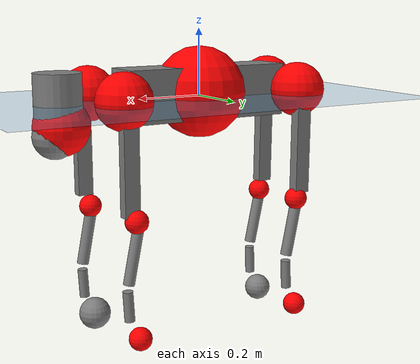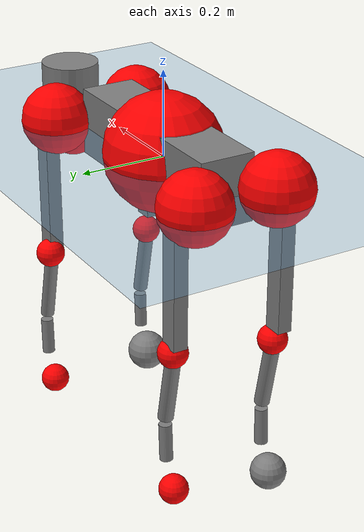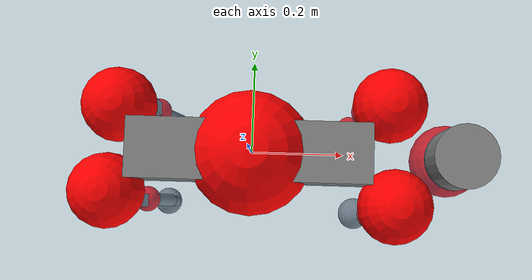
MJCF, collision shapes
<mujoco model="go2">
  <compiler angle="radian" assetdir="assets" balanceinertia="true" inertiafromgeom="false"/>

  <option timestep="0.005" density="1.2" viscosity="2e-05"/>

  <size nkey="1"/>

  <visual>
    <quality shadowsize="8192"/>
    <map shadowclip="0.5"/>
  </visual>

  <default>
    <default class="/">
      <geom contype="0" conaffinity="0" group="1" solref="-1000 -80"/>
      <site size="0.01 0.005 0.005" group="5"/>
      <general forcelimited="true" biastype="affine" gainprm="20" biasprm="0 -20 -0.5"/>
      <default class="go2">
        <joint armature="0.01" damping="0.01" frictionloss="0.2"/>
        <geom condim="1" margin="0.001"/>
        <default class="visual">
          <geom type="mesh" group="2"/>
        </default>
        <default class="collision">
          <geom group="3"/>
          <default class="foot">
            <geom size="0.022 0 0" condim="6" priority="1" friction="0.8 0.02 0.01" solimp="0.015 1 0.022"/>
          </default>
        </default>
        <default class="reward_collision_sphere">
          <geom group="5" rgba="1 0 0 1"/>
        </default>
      </default>
    </default>
  </default>

  <asset>
    <texture type="skybox" colorspace="auto" name="//unnamed_texture_0" builtin="gradient" rgb1="0.95 0.95 0.95" rgb2="0.95 0.95 0.95" width="100" height="600"/>
    <texture type="2d" colorspace="auto" name="texplane" builtin="checker" rgb1="0.345 0.575 0.748" rgb2="0.345 0.575 0.748" markrgb="1 1 1" width="512" height="512"/>
    <material name="MatPlane" class="/" texture="texplane" texuniform="true" texrepeat="2 2" specular="0.9"/>
    <material name="metal" class="/" rgba="0.9 0.95 0.95 1"/>
    <material name="black" class="/" rgba="0 0 0 1"/>
    <material name="white" class="/"/>
    <material name="gray" class="/" rgba="0.671705 0.692426 0.77427 1"/>
    <mesh name="base_0" class="/" file="base_0.obj"/>
    <mesh name="base_1" class="/" file="base_1.obj"/>
    <mesh name="base_2" class="/" file="base_2.obj"/>
    <mesh name="base_3" class="/" file="base_3.obj"/>
    <mesh name="base_4" class="/" file="base_4.obj"/>
    <mesh name="hip_0" class="/" file="hip_0.obj"/>
    <mesh name="hip_1" class="/" file="hip_1.obj"/>
    <mesh name="thigh_0" class="/" file="thigh_0.obj"/>
    <mesh name="thigh_1" class="/" file="thigh_1.obj"/>
    <mesh name="thigh_mirror_0" class="/" file="thigh_mirror_0.obj"/>
    <mesh name="thigh_mirror_1" class="/" file="thigh_mirror_1.obj"/>
    <mesh name="calf_0" class="/" file="calf_0.obj"/>
    <mesh name="calf_1" class="/" file="calf_1.obj"/>
    <mesh name="calf_mirror_0" class="/" file="calf_mirror_0.obj"/>
    <mesh name="calf_mirror_1" class="/" file="calf_mirror_1.obj"/>
    <mesh name="foot" class="/" file="foot.obj"/>
  </asset>

  <worldbody>
    <geom name="floor" class="/" size="100 100 0.125" type="plane" group="0" material="MatPlane"/>
    <light name="toplight_shadow" class="/" pos="0 0 5" dir="0.0990148 0.0990148 -0.990148" type="directional" ambient="0.04 0.04 0.04" diffuse="0.55 0.55 0.55" specular="0.12 0.12 0.12"/>
    <light name="toplight_fill" class="/" pos="0 0 5" dir="0.0990148 0.0990148 -0.990148" type="directional" castshadow="false" ambient="0.04 0.04 0.04" diffuse="0.3 0.3 0.3" specular="0.08 0.08 0.08"/>
    <body name="trunk" childclass="go2" pos="-0.0024907 -0.000657639 0.0109518" quat="0.999999 0.000280984 0.00140234 -0.000279607">
      <inertial pos="0.0456234 0.0137223 -0.0164879" quat="-0.0256266 0.728003 -0.000442034 0.685094" mass="18.0025" diaginertia="0.808349 0.0492796 0.250007"/>
      <joint name="//unnamed_joint_0" type="free" armature="0" damping="0" frictionloss="0"/>
      <geom name="//unnamed_geom_1" class="visual" material="black" mesh="base_0"/>
      <geom name="//unnamed_geom_2" class="visual" material="black" mesh="base_1"/>
      <geom name="//unnamed_geom_3" class="visual" material="black" mesh="base_2"/>
      <geom name="//unnamed_geom_4" class="visual" material="white" mesh="base_3"/>
      <geom name="//unnamed_geom_5" class="visual" material="gray" mesh="base_4"/>
      <geom name="trunk_1" class="collision" size="0.259469 0.0644878 0.0786269" type="box"/>
      <geom name="trunk_2" class="collision" size="0.0689709 0.0620739" pos="0.453002 0 0.0164234" type="cylinder"/>
      <geom name="trunk_3" class="collision" size="0.0648327" pos="0.465718 0 -0.0985405"/>
      <geom name="//unnamed_geom_9" class="reward_collision_sphere" size="0.137942"/>
      <geom name="//unnamed_geom_10" class="reward_collision_sphere" size="0.0827651" pos="0.445054 0 -0.0739053"/>
      <site name="imu" pos="0.038405 0.0171008 0.00139082" size="0.0137942"/>
      <camera name="track" pos="0 -1.81287 0" quat="0.707107 0.707107 0 0" mode="trackcom"/>
      <camera name="ego_camera" pos="0.495918 0 0.0739053" quat="-0.5 -0.5 0.5 0.5"/>
      <body name="FL_hip" pos="0.304031 0.0490869 0.000869495" quat="0.999991 -0.0022191 0.00238091 0.00266883">
        <inertial pos="-0.0224417 0.0102872 0.00172413" quat="0.531111 0.475936 0.482364 0.508657" mass="2.13033" diaginertia="0.0107827 0.000372703 0.0053727"/>
        <joint name="FL_hip_joint" pos="0 0 0" axis="0.99829 -0.0583586 -0.00348521" stiffness="0.0290048" range="-1.00618 0.862573" armature="0.00350551" damping="0.0783559" frictionloss="0.333122"/>
        <geom name="//unnamed_geom_11" class="visual" material="metal" mesh="hip_0"/>
        <geom name="//unnamed_geom_12" class="visual" material="gray" mesh="hip_1"/>
        <geom name="//unnamed_geom_13" class="collision" size="0.0634533 0.0275884" pos="0 0.0725149 0" quat="0.707107 0.707107 0 0" type="cylinder"/>
        <geom name="//unnamed_geom_14" class="reward_collision_sphere" size="0.0827651" pos="0 0.0634505 0"/>
        <body name="FL_thigh" pos="-0.000341889 0.0887529 -0.000373251" quat="0.999999 0.000166841 -0.000126464 -0.00104682">
          <inertial pos="-0.0134572 -0.0182493 -0.067857" quat="0.823302 0.064051 -0.0340456 0.56295" mass="2.58348" diaginertia="0.0693082 0.00347653 0.0107585"/>
          <joint name="FL_thigh_joint" pos="0 0 0" axis="-0.00384977 0.996999 0.07732" range="-1.46612 3.40612" armature="0.0112926" damping="0.0366243" frictionloss="0.463792"/>
          <geom name="//unnamed_geom_15" class="visual" material="metal" mesh="thigh_0"/>
          <geom name="//unnamed_geom_16" class="visual" material="gray" mesh="thigh_1"/>
          <geom name="//unnamed_geom_17" class="collision" size="0.146908 0.0168979 0.0234501" pos="0 0 -0.174909" quat="0.707107 0 0.707107 0" type="box"/>
          <body name="FL_calf" pos="-0.0124943 0.0128739 -0.334017" quat="0.999981 0.00619305 5.61044e-05 -0.000767314">
            <inertial pos="0.0150317 -0.000738119 -0.227049" quat="0.726008 0.0162299 -0.00200153 0.687492" mass="0.717949" diaginertia="0.0169848 0.000893405 0.000748843"/>
            <joint name="FL_calf_joint" pos="0 0 0" axis="0.0553913 0.997933 -0.0325832" stiffness="0.00646398" range="-2.51222 -0.980986" armature="0.00820545" damping="0.0701581" frictionloss="0.135917"/>
            <geom name="//unnamed_geom_18" class="visual" material="gray" mesh="calf_0"/>
            <geom name="//unnamed_geom_19" class="visual" material="black" mesh="calf_1"/>
            <geom name="FL_calf0" class="collision" size="0.016553 0.0827651" pos="0.0127158 0 -0.0985405" quat="0.994493 0 -0.104807 0" type="cylinder"/>
            <geom name="//unnamed_geom_21" class="collision" size="0.0151736 0.0448311" pos="0.0317896 0 -0.243066" quat="0.999688 0 0.0249974 0" type="cylinder"/>
            <geom name="//unnamed_geom_22" class="visual" pos="0 0 -0.349819" quat="1 0 0 0" material="black" mesh="foot"/>
            <geom name="FL_foot" class="foot" size="0.0327648" pos="-0.00317896 0 -0.349819"/>
            <geom name="//unnamed_geom_24" class="reward_collision_sphere" size="0.0344855"/>
            <geom name="//unnamed_geom_25" class="reward_collision_sphere" size="0.0344855" pos="-0.00317896 0 -0.349819"/>
            <site name="FL_foot" class="foot" pos="-0.00317896 0 -0.349819" size="0.0137942"/>
          </body>
        </body>
      </body>
      <body name="FR_hip" pos="0.317743 -0.0452471 0.00237586" quat="1 0.000279446 0.000208655 -1.23908e-05">
        <inertial pos="-0.0220642 0.00109117 -0.00241502" quat="0.496484 0.506315 0.500639 0.496497" mass="1.65795" diaginertia="0.0086132 0.000281574 0.00506979"/>
        <joint name="FR_hip_joint" pos="0 0 0" axis="0.999408 -0.0213998 -0.0269465" stiffness="0.031661" range="-0.765876 0.971851" armature="0.0225402" damping="0.00966862" frictionloss="0.465598"/>
        <geom name="//unnamed_geom_26" class="visual" pos="0 -6.4109e-09 -2.74977e-07" quat="4.63268e-05 1 0 0" material="metal" mesh="hip_0"/>
        <geom name="//unnamed_geom_27" class="visual" pos="0 -1.03928e-08 6.80123e-07" quat="4.63268e-05 1 0 0" material="gray" mesh="hip_1"/>
        <geom name="//unnamed_geom_28" class="collision" size="0.0634533 0.0275884" pos="0 -0.0725149 0" quat="0.707107 0.707107 0 0" type="cylinder"/>
        <geom name="//unnamed_geom_29" class="reward_collision_sphere" size="0.0827651" pos="0 -0.0634505 0"/>
        <body name="FR_thigh" pos="0.00784518 -0.101109 0.00858769" quat="0.999998 0.001951 0.000626389 0.000625944">
          <inertial pos="-0.00451688 0.0165935 -0.0513034" quat="0.599272 0.00672848 0.064023 0.797953" mass="4.11146" diaginertia="0.0670977 0.00358257 0.0108289"/>
          <joint name="FR_thigh_joint" pos="0 0 0" axis="0.0517948 -0.998181 0.0308414" stiffness="0.0218309" range="-3.80296 1.36012" armature="0.0124369" damping="0.0719653" frictionloss="0.0437506"/>
          <geom name="//unnamed_geom_30" class="visual" material="metal" mesh="thigh_mirror_0"/>
          <geom name="//unnamed_geom_31" class="visual" material="gray" mesh="thigh_mirror_1"/>
          <geom name="//unnamed_geom_32" class="collision" size="0.146908 0.0168979 0.0234501" pos="0 0 -0.174909" quat="0.707107 0 0.707107 0" type="box"/>
          <body name="FR_calf" pos="-0.0136094 0.0145897 -0.357187" quat="0.999999 0.000329842 0.000680241 -0.000812139">
            <inertial pos="0.00988655 0.00229889 -0.246728" quat="0.685922 0.0184724 -0.0326334 0.726708" mass="0.655802" diaginertia="0.0178674 0.00102376 0.000614729"/>
            <joint name="FR_calf_joint" pos="0 0 0" axis="-0.010222 -0.999915 -0.00808597" range="1.03093 2.51875" armature="0.0181005" damping="0" frictionloss="0.485308"/>
            <geom name="//unnamed_geom_33" class="visual" material="gray" mesh="calf_mirror_0"/>
            <geom name="//unnamed_geom_34" class="visual" material="black" mesh="calf_mirror_1"/>
            <geom name="FR_calf0" class="collision" size="0.0179324 0.0827651" pos="0.0158948 0 -0.0985405" quat="0.995004 0 -0.0998334 0" type="cylinder"/>
            <geom name="//unnamed_geom_36" class="collision" size="0.0151736 0.0448311" pos="0.0317896 0 -0.243066" quat="0.999688 0 0.0249974 0" type="cylinder"/>
            <geom name="//unnamed_geom_37" class="visual" pos="0 0 -0.349819" quat="1 0 0 0" material="black" mesh="foot"/>
            <geom name="FR_foot" class="foot" size="0.0496266" pos="-0.00317896 0 -0.349819"/>
            <geom name="//unnamed_geom_39" class="reward_collision_sphere" size="0.0344855"/>
            <geom name="//unnamed_geom_40" class="reward_collision_sphere" size="0.0344855" pos="-0.00317896 0 -0.349819"/>
            <site name="FR_foot" class="foot" pos="-0.00317896 0 -0.349819" size="0.0137942"/>
          </body>
        </body>
      </body>
      <body name="RL_hip" pos="-0.291874 0.0344174 0.000784976" quat="0.999996 -0.000133578 -0.0016446 -0.00234681">
        <inertial pos="0.000573073 -0.0123742 -0.00187686" quat="0.501089 0.472215 0.484964 0.539196" mass="1.76873" diaginertia="0.0112978 0.000343086 0.0078092"/>
        <joint name="RL_hip_joint" pos="0 0 0" axis="-0.999437 -0.0263261 -0.0207765" stiffness="0.0332445" range="-1.18685 1.38362" armature="0.0240891" damping="0.0600253" frictionloss="0.295647"/>
        <geom name="//unnamed_geom_41" class="visual" pos="4.60503e-10 0 9.02693e-08" quat="4.63268e-05 0 1 0" material="metal" mesh="hip_0"/>
        <geom name="//unnamed_geom_42" class="visual" pos="7.46531e-10 0 8.0056e-08" quat="4.63268e-05 0 1 0" material="gray" mesh="hip_1"/>
        <geom name="//unnamed_geom_43" class="collision" size="0.0634533 0.0275884" pos="0 0.0725149 0" quat="0.707107 0.707107 0 0" type="cylinder"/>
        <geom name="//unnamed_geom_44" class="reward_collision_sphere" size="0.0827651" pos="0 0.0634505 0"/>
        <body name="RL_thigh" pos="0.0102694 0.103074 0.00525123" quat="1 -8.87446e-05 3.36551e-05 7.02937e-05">
          <inertial pos="-0.00684489 -0.0327286 -0.0499728" quat="0.825819 0.0935581 -0.0154066 0.555907" mass="3.03094" diaginertia="0.0601754 0.00404554 0.00979328"/>
          <joint name="RL_thigh_joint" pos="0 0 0" axis="-0.0179599 0.997927 0.0618013" range="-0.531856 4.5928" armature="0.0197192" damping="0.049967" frictionloss="0.183564"/>
          <geom name="//unnamed_geom_45" class="visual" material="metal" mesh="thigh_0"/>
          <geom name="//unnamed_geom_46" class="visual" material="gray" mesh="thigh_1"/>
          <geom name="//unnamed_geom_47" class="collision" size="0.146908 0.0168979 0.0234501" pos="0 0 -0.174909" quat="0.707107 0 0.707107 0" type="box"/>
          <body name="RL_calf" pos="0.0103956 -0.00136132 -0.342775" quat="0.999993 -0.000724571 0.00340612 -0.00111491">
            <inertial pos="0.00941487 -0.000654171 -0.23128" quat="0.69702 0.0654903 -0.0555259 0.711892" mass="0.63152" diaginertia="0.0147506 0.000861388 0.000761769"/>
            <joint name="RL_calf_joint" pos="0 0 0" axis="-0.00014814 0.998305 0.0582052" range="-2.74065 -0.836931" armature="0.0214002" damping="0.0227858" frictionloss="0.132003"/>
            <geom name="//unnamed_geom_48" class="visual" material="gray" mesh="calf_0"/>
            <geom name="//unnamed_geom_49" class="visual" material="black" mesh="calf_1"/>
            <geom name="RL_calf0" class="collision" size="0.0179324 0.0827651" pos="0.0158948 0 -0.0985405" quat="0.995004 0 -0.0998334 0" type="cylinder"/>
            <geom name="//unnamed_geom_51" class="collision" size="0.0151736 0.0448311" pos="0.0317896 0 -0.243066" quat="0.999688 0 0.0249974 0" type="cylinder"/>
            <geom name="//unnamed_geom_52" class="visual" pos="0 0 -0.349819" quat="1 0 0 0" material="black" mesh="foot"/>
            <geom name="RL_foot" class="foot" size="0.0118948" pos="-0.00317896 0 -0.349819"/>
            <geom name="//unnamed_geom_54" class="reward_collision_sphere" size="0.0344855"/>
            <geom name="//unnamed_geom_55" class="reward_collision_sphere" size="0.0344855" pos="-0.00317896 0 -0.349819"/>
            <site name="RL_foot" class="foot" pos="-0.00317896 0 -0.349819" size="0.0137942"/>
          </body>
        </body>
      </body>
      <body name="RR_hip" pos="-0.30906 -0.027945 0.00795832" quat="0.999982 -0.00369931 -0.004306 -0.00193062">
        <inertial pos="0.0229859 -0.001124 -0.0134407" quat="0.485452 0.510881 0.483709 0.519001" mass="1.9814" diaginertia="0.00993319 0.000401464 0.00755938"/>
        <joint name="RR_hip_joint" pos="0 0 0" axis="-0.999996 -0.00210832 -0.00179508" stiffness="0.0424318" range="-0.789078 0.736252" armature="0.0143666" damping="0.0589128" frictionloss="0.27984"/>
        <geom name="//unnamed_geom_56" class="visual" pos="-4.84151e-10 -6.4109e-09 3.65246e-07" quat="2.14617e-09 4.63268e-05 4.63268e-05 -1" material="metal" mesh="hip_0"/>
        <geom name="//unnamed_geom_57" class="visual" pos="-6.88042e-10 -1.03928e-08 -6.00067e-07" quat="2.14617e-09 4.63268e-05 4.63268e-05 -1" material="gray" mesh="hip_1"/>
        <geom name="//unnamed_geom_58" class="collision" size="0.0634533 0.0275884" pos="0 -0.0725149 0" quat="0.707107 0.707107 0 0" type="cylinder"/>
        <geom name="//unnamed_geom_59" class="reward_collision_sphere" size="0.0827651" pos="0 -0.0634505 0"/>
        <body name="RR_thigh" pos="-0.00185907 -0.0781763 -0.0143478" quat="0.999999 0.000593923 0.000963264 -0.000319734">
          <inertial pos="-0.0170961 0.0249923 -0.0578278" quat="0.552103 -0.0179101 0.084747 0.829265" mass="4.34147" diaginertia="0.0846573 0.00423779 0.0119015"/>
          <joint name="RR_thigh_joint" pos="0 0 0" axis="0.0594598 -0.998015 -0.0207564" stiffness="0.00691627" range="-4.57433 0.539665" armature="0.0189199" damping="0.0428525" frictionloss="0.27751"/>
          <geom name="//unnamed_geom_60" class="visual" material="metal" mesh="thigh_mirror_0"/>
          <geom name="//unnamed_geom_61" class="visual" material="gray" mesh="thigh_mirror_1"/>
          <geom name="//unnamed_geom_62" class="collision" size="0.146908 0.0168979 0.0234501" pos="0 0 -0.174909" quat="0.707107 0 0.707107 0" type="box"/>
          <body name="RR_calf" pos="0.0140131 0.00475425 -0.35375" quat="0.999991 0.00125896 0.000723117 0.0039639">
            <inertial pos="0.0172324 -0.000845706 -0.234133" quat="0.680504 -0.0604114 -0.0108491 0.73017" mass="0.592246" diaginertia="0.0163983 0.000732039 0.000606421"/>
            <joint name="RR_calf_joint" pos="0 0 0" axis="0.00553852 -0.999976 -0.00407659" range="0.926107 2.84585" armature="0.0243218" damping="0" frictionloss="0.277617"/>
            <geom name="//unnamed_geom_63" class="visual" material="gray" mesh="calf_mirror_0"/>
            <geom name="//unnamed_geom_64" class="visual" material="black" mesh="calf_mirror_1"/>
            <geom name="RR_calf0" class="collision" size="0.0179324 0.0827651" pos="0.0158948 0 -0.0985405" quat="0.995004 0 -0.0998334 0" type="cylinder"/>
            <geom name="//unnamed_geom_66" class="collision" size="0.0151736 0.0448311" pos="0.0317896 0 -0.243066" quat="0.999688 0 0.0249974 0" type="cylinder"/>
            <geom name="//unnamed_geom_67" class="visual" pos="0 0 -0.349819" quat="1 0 0 0" material="black" mesh="foot"/>
            <geom name="RR_foot" class="foot" size="0.042383" pos="-0.00317896 0 -0.349819"/>
            <geom name="//unnamed_geom_69" class="reward_collision_sphere" size="0.0344855"/>
            <geom name="//unnamed_geom_70" class="reward_collision_sphere" size="0.0344855" pos="-0.00317896 0 -0.349819"/>
            <site name="RR_foot" class="foot" pos="-0.00317896 0 -0.349819" size="0.0137942"/>
          </body>
        </body>
      </body>
    </body>
  </worldbody>

  <contact>
    <pair class="/" geom1="floor" geom2="FL_foot" name="//unnamed_contact_0"/>
    <pair class="/" geom1="floor" geom2="FR_foot" name="//unnamed_contact_1"/>
    <pair class="/" geom1="floor" geom2="RL_foot" name="//unnamed_contact_2"/>
    <pair class="/" geom1="floor" geom2="RR_foot" name="//unnamed_contact_3"/>
  </contact>

  <actuator>
    <general name="FL_hip" class="/" joint="FL_hip_joint" forcerange="-37.4261 37.4261" gainprm="24.4066" biasprm="0 -24.4066 -0.773493"/>
    <general name="FL_thigh" class="/" joint="FL_thigh_joint" forcerange="-44.2469 44.2469" gainprm="24.4066" biasprm="0 -24.4066 -0.773493"/>
    <general name="FL_calf" class="/" joint="FL_calf_joint" forcerange="-75.1132 75.1132" gainprm="24.4066" biasprm="0 -24.4066 -0.773493"/>
    <general name="FR_hip" class="/" joint="FR_hip_joint" forcerange="-44.9589 44.9589" gainprm="24.4066" biasprm="0 -24.4066 -0.773493"/>
    <general name="FR_thigh" class="/" joint="FR_thigh_joint" forcerange="-22.8091 22.8091" gainprm="24.4066" biasprm="0 -24.4066 -0.773493"/>
    <general name="FR_calf" class="/" joint="FR_calf_joint" forcerange="-94.197 94.197" gainprm="24.4066" biasprm="0 -24.4066 -0.773493"/>
    <general name="RL_hip" class="/" joint="RL_hip_joint" forcerange="-32.3722 32.3722" gainprm="24.4066" biasprm="0 -24.4066 -0.773493"/>
    <general name="RL_thigh" class="/" joint="RL_thigh_joint" forcerange="-49.4015 49.4015" gainprm="24.4066" biasprm="0 -24.4066 -0.773493"/>
    <general name="RL_calf" class="/" joint="RL_calf_joint" forcerange="-74.3439 74.3439" gainprm="24.4066" biasprm="0 -24.4066 -0.773493"/>
    <general name="RR_hip" class="/" joint="RR_hip_joint" forcerange="-40.5157 40.5157" gainprm="24.4066" biasprm="0 -24.4066 -0.773493"/>
    <general name="RR_thigh" class="/" joint="RR_thigh_joint" forcerange="-51.1387 51.1387" gainprm="24.4066" biasprm="0 -24.4066 -0.773493"/>
    <general name="RR_calf" class="/" joint="RR_calf_joint" forcerange="-32.6363 32.6363" gainprm="24.4066" biasprm="0 -24.4066 -0.773493"/>
  </actuator>

  <sensor>
    <gyro site="imu" name="imu_angular_velocity"/>
    <velocimeter site="imu" name="imu_linear_velocity"/>
    <framelinvel objtype="site" objname="FL_foot" name="FL_foot_global_linear_velocity"/>
    <framelinvel objtype="site" objname="FR_foot" name="FR_foot_global_linear_velocity"/>
    <framelinvel objtype="site" objname="RL_foot" name="RL_foot_global_linear_velocity"/>
    <framelinvel objtype="site" objname="RR_foot" name="RR_foot_global_linear_velocity"/>
  </sensor>

  <keyframe>
    <key name="home" qpos="0 0 0.325 1 0 0 0 0.1 0.8 -1.5 -0.1 -0.8 1.5 -0.1 0.8 -1.5 0.1 -0.8 1.5"/>
  </keyframe>
</mujoco>
